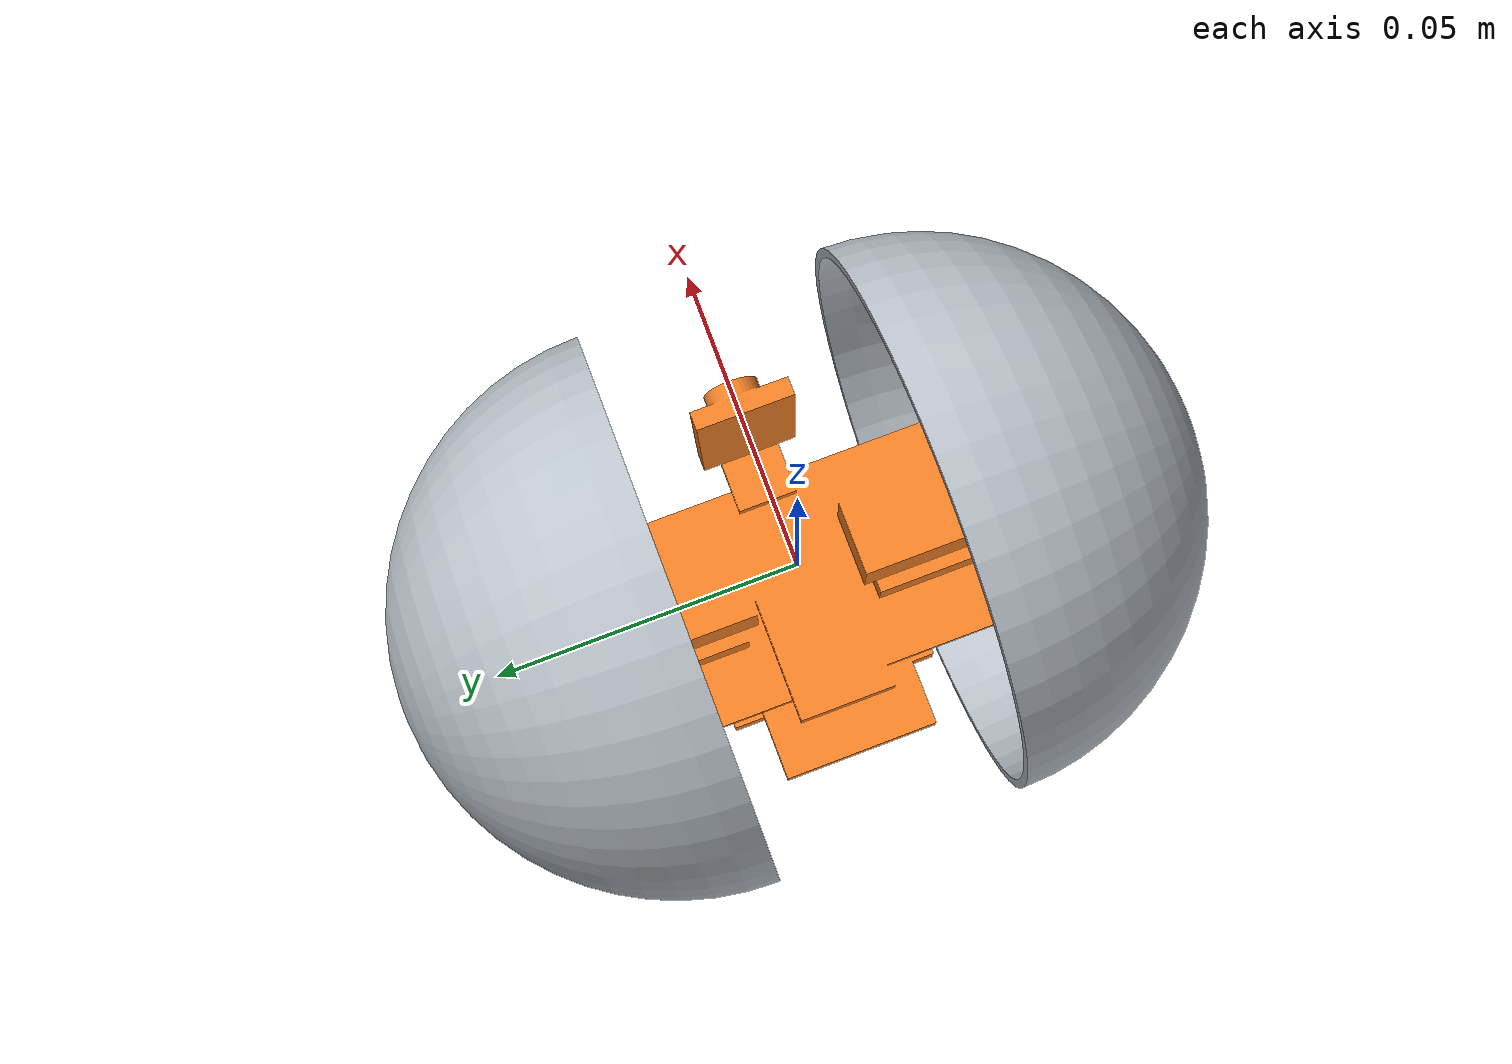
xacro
<?xml version="1.0"?>
<robot name="sphere_scout" xmlns:xacro="http://www.ros.org/wiki/xacro">
  <xacro:include filename="$(find sphere_scout_description)/urdf/params.xacro"/>
  <xacro:property name="mesh_dir" value="file://$(find sphere_scout_description)/meshes"/>
  <xacro:property name="mm" value="0.001 0.001 0.001"/>

  <link name="base_link">
    <inertial>
      <origin xyz="${core_com_x} ${core_com_y} ${-core_com_offset_z}"/>
      <mass value="${core_mass}"/>
      <inertia ixx="${core_ixx}" iyy="${core_iyy}" izz="${core_izz}" ixy="0" ixz="${core_ixz}" iyz="0"/>
    </inertial>
    <visual>
      <origin xyz="${core_mesh_offset}"/>
      <geometry><mesh filename="${mesh_dir}/core.stl" scale="${mm}"/></geometry>
      <material name="core_orange"><color rgba="0.95 0.5 0.15 1"/></material>
    </visual>
    <collision name="belly">
      <origin xyz="${belly_xyz}"/>
      <geometry><box size="${belly_size}"/></geometry>
    </collision>
  </link>
  <gazebo reference="base_link">
    <mu1>${belly_mu}</mu1>
    <mu2>${belly_mu}</mu2>
  </gazebo>

  <joint name="ballast_joint" type="fixed">
    <parent link="base_link"/>
    <child link="ballast_link"/>
    <origin xyz="${ballast_xyz}"/>
  </joint>
  <link name="ballast_link">
    <xacro:property name="bx" value="${ballast_size.split()}"/>
    <inertial>
      <mass value="${ballast_mass}"/>
      <inertia ixx="${ballast_mass * (float(bx[1])**2 + float(bx[2])**2) / 12}"
               iyy="${ballast_mass * (float(bx[0])**2 + float(bx[2])**2) / 12}"
               izz="${ballast_mass * (float(bx[0])**2 + float(bx[1])**2) / 12}"
               ixy="0" ixz="0" iyz="0"/>
    </inertial>
    <visual>
      <geometry><box size="${ballast_size}"/></geometry>
      <material name="lead_grey"><color rgba="0.3 0.3 0.33 1"/></material>
    </visual>
  </link>

  <!-- side: +1 left, -1 right. The left mesh is the CAD shell turned 180 deg about z so its
       pole faces +y; both meshes are moved so the rim centre is the link origin. -->
  <xacro:macro name="shell" params="name side mesh_rpy mesh_xyz">
    <joint name="${name}_shell_joint" type="prismatic">
      <parent link="base_link"/>
      <child link="${name}_slider"/>
      <origin xyz="0 ${side * rolling_gap / 2} 0"/>
      <axis xyz="0 ${side} 0"/>
      <limit lower="0" upper="${shell_extension_max}" effort="1" velocity="0.05"/>
    </joint>
    <link name="${name}_slider">
      <inertial>
        <mass value="${slider_mass}"/>
        <inertia ixx="1e-6" iyy="1e-6" izz="1e-6" ixy="0" ixz="0" iyz="0"/>
      </inertial>
    </link>
    <joint name="${name}_wheel_joint" type="continuous">
      <parent link="${name}_slider"/>
      <child link="${name}_shell"/>
      <axis xyz="0 1 0"/>
    </joint>
    <link name="${name}_shell">
      <!-- thin hemispherical shell: CoM half a radius out from the rim plane -->
      <inertial>
        <origin xyz="0 ${side * shell_radius / 2} 0"/>
        <mass value="${shell_mass}"/>
        <inertia ixx="${5.0 / 12 * shell_mass * shell_radius**2}" iyy="${2.0 / 3 * shell_mass * shell_radius**2}"
                 izz="${5.0 / 12 * shell_mass * shell_radius**2}" ixy="0" ixz="0" iyz="0"/>
      </inertial>
      <visual>
        <origin xyz="${mesh_xyz}" rpy="${mesh_rpy}"/>
        <geometry><mesh filename="${mesh_dir}/${name}_shell.stl" scale="${mm}"/></geometry>
        <material name="shell_grey"><color rgba="0.72 0.75 0.78 1"/></material>
      </visual>
      <collision>
        <geometry><sphere radius="${shell_radius}"/></geometry>
      </collision>
    </link>
    <gazebo reference="${name}_shell">
      <mu1>${shell_mu}</mu1>
      <mu2>${shell_mu}</mu2>
    </gazebo>
  </xacro:macro>
  <!-- CAD shells: axis at x 45.45, z 45.45 mm; rim at y 45.66 mm, pole at y 0.66 mm -->
  <xacro:shell name="left" side="1" mesh_rpy="0 0 ${pi}" mesh_xyz="0.04545 0.04566 -0.04545"/>
  <xacro:shell name="right" side="-1" mesh_rpy="0 0 0" mesh_xyz="-0.04545 -0.04566 -0.04545"/>

  <joint name="thermal_joint" type="fixed">
    <parent link="base_link"/>
    <child link="thermal_link"/>
    <origin xyz="${thermal_xyz}" rpy="${thermal_rpy}"/>
  </joint>
  <link name="thermal_link"/>

  <joint name="camera_joint" type="fixed">
    <parent link="base_link"/>
    <child link="camera_link"/>
    <origin xyz="${rgb_xyz}" rpy="${rgb_rpy}"/>
  </joint>
  <link name="camera_link"/>

  <joint name="imu_joint" type="fixed">
    <parent link="base_link"/>
    <child link="imu_link"/>
    <origin xyz="${imu_xyz}" rpy="${imu_rpy}"/>
  </joint>
  <link name="imu_link"/>

  <gazebo>
    <plugin filename="gz-sim-diff-drive-system" name="gz::sim::systems::DiffDrive">
      <left_joint>left_wheel_joint</left_joint>
      <right_joint>right_wheel_joint</right_joint>
      <wheel_separation>${rolling_gap}</wheel_separation>
      <wheel_radius>${shell_radius}</wheel_radius>
      <max_linear_velocity>${max_speed}</max_linear_velocity>
      <max_linear_acceleration>${max_accel}</max_linear_acceleration>
      <max_angular_velocity>${max_turn_rate}</max_angular_velocity>
      <max_angular_acceleration>${max_turn_accel}</max_angular_acceleration>
      <topic>/cmd_vel</topic>
      <odom_topic>/odom</odom_topic>
      <odom_publish_frequency>30</odom_publish_frequency>
      <frame_id>odom</frame_id>
      <child_frame_id>base_link</child_frame_id>
      <!-- not bridged: only the EKF publishes odom -> base_link -->
      <tf_topic>/model/sphere_scout/tf</tf_topic>
    </plugin>
    <!-- one controller per shell on the same topic: one command moves both. Velocity mode, so
         the shells' sideways ground friction can't stall them. -->
    <xacro:macro name="shell_controller" params="name">
      <plugin filename="gz-sim-joint-position-controller-system"
              name="gz::sim::systems::JointPositionController">
        <joint_name>${name}_shell_joint</joint_name>
        <topic>/shell_cmd</topic>
        <use_velocity_commands>true</use_velocity_commands>
        <p_gain>5</p_gain>
        <cmd_max>0.05</cmd_max>
        <cmd_min>-0.05</cmd_min>
      </plugin>
    </xacro:macro>
    <xacro:shell_controller name="left"/>
    <xacro:shell_controller name="right"/>
    <plugin filename="gz-sim-joint-state-publisher-system"
            name="gz::sim::systems::JointStatePublisher">
      <topic>/joint_states</topic>
      <update_rate>50</update_rate>
    </plugin>
  </gazebo>

  <gazebo reference="thermal_link">
    <sensor name="thermal_camera" type="thermal">
      <gz_frame_id>thermal_link</gz_frame_id>
      <topic>/thermal/image_raw</topic>
      <update_rate>8</update_rate>
      <always_on>true</always_on>
      <camera>
        <horizontal_fov>0.96</horizontal_fov>  <!-- 55 deg, MLX90640, across the shell gap -->
        <image><width>32</width><height>24</height><format>L16</format></image>
        <!-- near clip under the 14.5 mm to the shell rims, so the shells can block the view -->
        <clip><near>0.01</near><far>20</far></clip>
      </camera>
      <plugin filename="gz-sim-thermal-sensor-system" name="gz::sim::systems::ThermalSensor">
        <resolution>0.01</resolution>  <!-- kelvin per pixel count -->
      </plugin>
    </sensor>
  </gazebo>

  <!-- LED headlight on the core, so it tips with the cameras -->
  <gazebo reference="base_link">
    <light name="headlight" type="spot">
      <pose>${headlight_xyz} 0 0 0</pose>
      <direction>1 0 0</direction>
      <diffuse>1.0 0.96 0.88 1</diffuse>
      <specular>0.3 0.3 0.3 1</specular>
      <attenuation>
        <range>${headlight_range}</range>
        <constant>0.3</constant>
        <linear>0.12</linear>
        <quadratic>0.04</quadratic>
      </attenuation>
      <spot>
        <inner_angle>${headlight_inner}</inner_angle>
        <outer_angle>${headlight_outer}</outer_angle>
        <falloff>1.0</falloff>
      </spot>
      <cast_shadows>false</cast_shadows>
    </light>
  </gazebo>

  <!-- RGB feed. The OV2640 gives JPEG; in simulation gazebo_world.launch.py compresses this raw
       image to /camera/image_raw/compressed the same way. At night it sees by the headlight. -->
  <gazebo reference="camera_link">
    <sensor name="rgb_camera" type="camera">
      <gz_frame_id>camera_link</gz_frame_id>
      <topic>/camera/image_raw</topic>
      <update_rate>${rgb_rate}</update_rate>
      <always_on>true</always_on>
      <camera>
        <horizontal_fov>${rgb_hfov}</horizontal_fov>
        <image><width>${rgb_width}</width><height>${rgb_height}</height><format>R8G8B8</format></image>
        <clip><near>0.01</near><far>50</far></clip>
        <noise><type>gaussian</type><mean>0</mean><stddev>0.007</stddev></noise>
      </camera>
    </sensor>
  </gazebo>

  <xacro:macro name="noise_xyz" params="stddev">
    <x><noise type="gaussian"><mean>0</mean><stddev>${stddev}</stddev></noise></x>
    <y><noise type="gaussian"><mean>0</mean><stddev>${stddev}</stddev></noise></y>
    <z><noise type="gaussian"><mean>0</mean><stddev>${stddev}</stddev></noise></z>
  </xacro:macro>
  <gazebo reference="imu_link">
    <sensor name="imu" type="imu">
      <gz_frame_id>imu_link</gz_frame_id>
      <topic>/imu/data</topic>
      <update_rate>100</update_rate>
      <always_on>true</always_on>
      <imu>
        <angular_velocity><xacro:noise_xyz stddev="${gyro_noise}"/></angular_velocity>
        <linear_acceleration><xacro:noise_xyz stddev="${accel_noise}"/></linear_acceleration>
      </imu>
    </sensor>
  </gazebo>
</robot>

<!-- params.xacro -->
<robot xmlns:xacro="http://www.ros.org/wiki/xacro">

  <!-- shells (CAD: 45 mm radius hemispheres, 1.5 mm wall, axle hub at the pole) -->
  <xacro:property name="shell_radius" value="0.045"/>
  <xacro:property name="shell_mass" value="0.0235"/>              <!-- calc -->
  <!-- distance between the two rim planes while rolling: 2 cm either side of the middle (team).
       DiffDrive's wheel_separation, since each shell touches the ground at its rim plane. -->
  <xacro:property name="rolling_gap" value="0.04"/>
  <!-- travel of each prismatic shell joint (assumed: GS-1502 stroke not given) -->
  <xacro:property name="shell_extension_max" value="0.01"/>
  <!-- rubber grips (team); the grips' small steps are not modelled as geometry -->
  <xacro:property name="shell_mu" value="1.0"/>
  <xacro:property name="slider_mass" value="0.002"/>             <!-- assumed: servo rod + bearing -->

  <!-- core without ballast (calc masses on CAD positions): 73.8 g, CoM 10.8 mm below the axle -->
  <xacro:property name="core_mass" value="0.0738"/>
  <xacro:property name="core_com_x" value="0.0008"/>
  <xacro:property name="core_com_y" value="-0.0008"/>
  <xacro:property name="core_com_offset_z" value="0.0108"/>      <!-- below the axle -->
  <xacro:property name="core_ixx" value="4.135e-05"/>
  <xacro:property name="core_iyy" value="1.934e-05"/>
  <xacro:property name="core_izz" value="3.825e-05"/>
  <xacro:property name="core_ixz" value="-2.65e-06"/>
  <!-- core mesh: CAD axle line is at x 33.5, z 0 mm and the middle plane at y 39.2 mm -->
  <xacro:property name="core_mesh_offset" value="-0.0335 -0.0392 0"/>
  <!-- lowest core parts (LiPo + ballast) as one box, so the belly can catch on rubble -->
  <xacro:property name="belly_xyz" value="-0.003 0 -0.0348"/>
  <xacro:property name="belly_size" value="0.029 0.036 0.0088"/>
  <xacro:property name="belly_mu" value="0.3"/>

  <!-- ballast under the LiPo (team: weight at the bottom; mass assumed): 20 g lead,
       20 x 20 x 4 mm. Whole robot then 141 g with its CoM 10.9 mm below the axle. -->
  <xacro:property name="ballast_mass" value="0.020"/>
  <xacro:property name="ballast_xyz" value="-0.003 0 -0.0372"/>
  <xacro:property name="ballast_size" value="0.020 0.020 0.004"/>

  <!-- sensors (CAD): MLX90640 can front at 30.5 mm ahead of the axle, landscape (55 deg across
       the gap, team); MPU-6050 board -->
  <xacro:property name="thermal_xyz" value="0.0305 0 0"/>
  <xacro:property name="thermal_rpy" value="0 0 0"/>
  <!-- RGB camera (team: OV2640 on an ESP32-S3, for example XIAO ESP32S3 Sense; pose, lens and
       rate assumed): just above the MLX90640 in the shell gap, looking forward -->
  <xacro:property name="rgb_xyz" value="0.0295 0 0.011"/>
  <xacro:property name="rgb_rpy" value="0 0 0"/>
  <xacro:property name="rgb_hfov" value="1.152"/>                <!-- 66 deg -->
  <xacro:property name="rgb_width" value="320"/>
  <xacro:property name="rgb_height" value="240"/>
  <xacro:property name="rgb_rate" value="15"/>
  <!-- white LED headlight for the RGB camera at night (assumed: about a 1 W LED with a 50 deg
       beam), just under the camera -->
  <xacro:property name="headlight_xyz" value="0.031 0 0.004"/>
  <xacro:property name="headlight_range" value="8"/>
  <xacro:property name="headlight_inner" value="0.5"/>          <!-- rad, full-brightness cone -->
  <xacro:property name="headlight_outer" value="0.9"/>          <!-- rad, edge of the beam -->

  <xacro:property name="imu_xyz" value="0 -0.025 -0.0195"/>
  <xacro:property name="imu_rpy" value="0 0 0"/>
  <xacro:property name="gyro_noise" value="0.001"/>              <!-- rad/s, assumed (MPU-6050 at 100 Hz) -->
  <xacro:property name="accel_noise" value="0.04"/>              <!-- m/s^2, assumed -->

  <!-- drive limits (assumed; the N20s could do about 1.4 m/s unloaded). max_accel is high so
       motor_state_machine's swing damping isn't clipped; it ramps teleop at 0.5 m/s^2 itself. -->
  <xacro:property name="max_speed" value="0.3"/>
  <xacro:property name="max_accel" value="3.0"/>
  <xacro:property name="max_turn_rate" value="1.5"/>
  <xacro:property name="max_turn_accel" value="3.0"/>
</robot>
